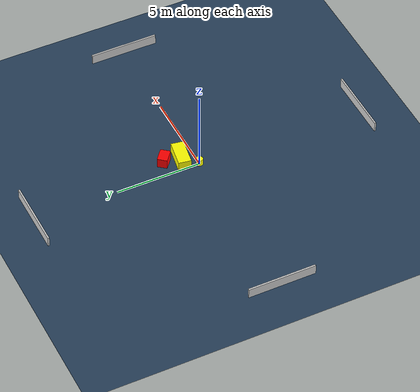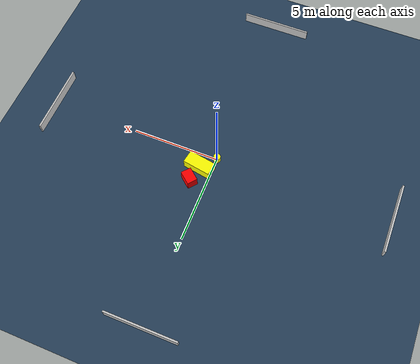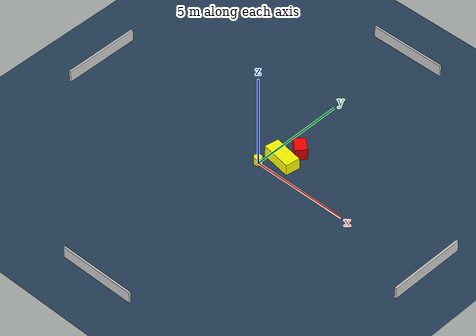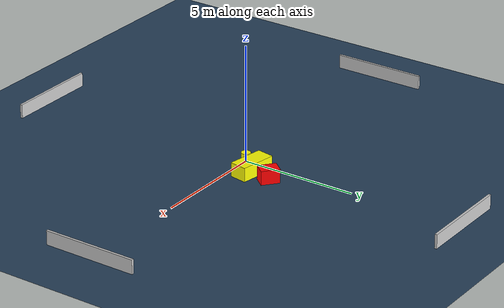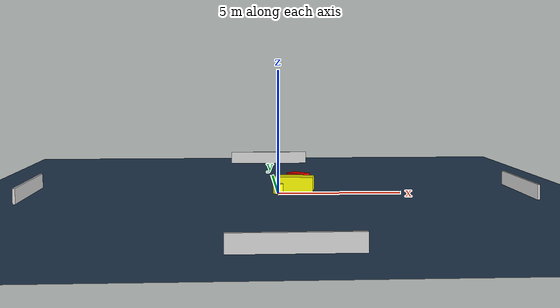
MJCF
<?xml version="1.0" ?>
<mujoco model="generated_environment">
  <option timestep="0.01" integrator="RK4" cone="elliptic"/>
  <default>
    <geom density="1"/>
  </default>
  <asset>
    <texture builtin="gradient" height="3072" name="skybox" rgb1="0.3 0.5 0.7" rgb2="0 0 0" type="skybox" width="512"/>
    <texture builtin="checker" height="300" name="groundplane" rgb1="0.2 0.3 0.4" rgb2="0.1 0.2 0.3" type="2d" width="300"/>
    <material name="groundplane" reflectance="0.2" texrepeat="5 5" texture="groundplane"/>
  </asset>
  <worldbody>
    <light dir="0 0 -1" directional="true" pos="0 0 1.5"/>
    <geom condim="3" friction="0.5 0.005 0.001" material="groundplane" name="floor" pos="0 0 0" size="0 0 0.05" type="plane"/>
    <body name="walls">
      <geom name="wall_1" condim="4" pos="-10.0 0.0 0.3" rgba="0.800000011920929 0.800000011920929 0.800000011920929 1.0" size="0.05 2.0 0.3" type="box"/>
      <geom name="wall_2" condim="4" pos="10.0 0.0 0.3" rgba="0.800000011920929 0.800000011920929 0.800000011920929 1.0" size="0.05 2.0 0.3" type="box"/>
      <geom name="wall_3" condim="4" pos="0.0 -10.0 0.3" rgba="0.800000011920929 0.800000011920929 0.800000011920929 1.0" size="2.0 0.05 0.3" type="box"/>
      <geom name="wall_4" condim="4" pos="0.0 10.0 0.3" rgba="0.800000011920929 0.800000011920929 0.800000011920929 1.0" size="2.0 0.05 0.3" type="box"/>
    </body>
    <body name="robot">
      <joint name="joint_x" type="slide" pos="0 0 0" axis="1 0 0"/>
      <joint name="joint_y" type="slide" pos="0 0 0" axis="0 1 0"/>
      <geom name="robot" type="cylinder" pos="0.0 0.0 0.2" size="0.2 0.2 0.0" mass="5.0" friction="1.0 0.005 0.0001" condim="4" rgba="1.0 1.0 0.0 1.0"/>
    </body>
    <body name="obstacle_1_movable">
      <geom name="obstacle_1_movable" condim="4" pos="0.7245682855218653 0.7889689336379585 0.3" euler="0 0 80.49976172681525" friction="0.0 0.005 0.001" rgba="1.0 1.0 0.0 1.0" size="0.3720265420103689 0.7853796090547915 0.3" type="box" mass="0.1"/>
      <joint type="free"/>
    </body>
    <body name="obstacle_2_static">
      <geom name="obstacle_2_static" condim="4" pos="0.9368689579156882 1.7433093618022002 0.3" euler="0 0 320.44392643861534" friction="0.0 0.005 0.001" rgba="1.0 0.0 0.0 1.0" size="0.3951747101556502 0.2920177401453524 0.3" type="box"/>
    </body>
  </worldbody>
  <actuator>
    <motor name="actuator_x" joint="joint_x" gear="1" ctrlrange="-1 1"/>
    <motor name="actuator_y" joint="joint_y" gear="1" ctrlrange="-1 1"/>
  </actuator>
</mujoco>
